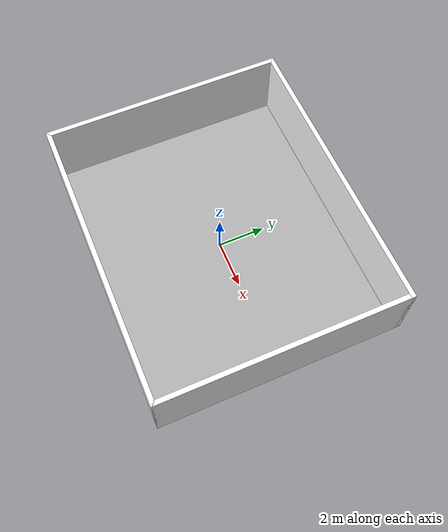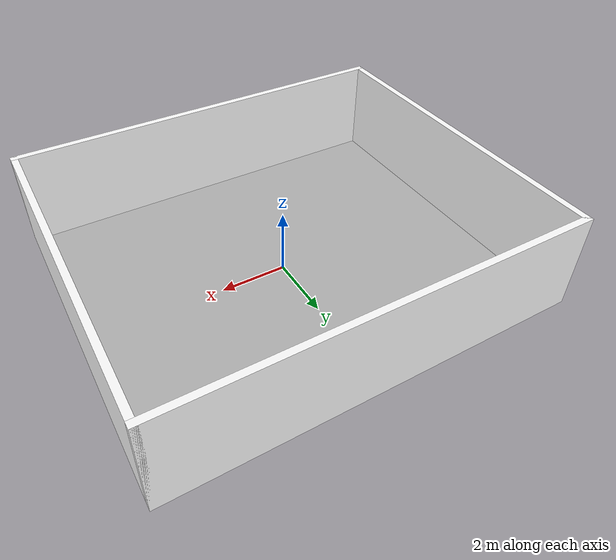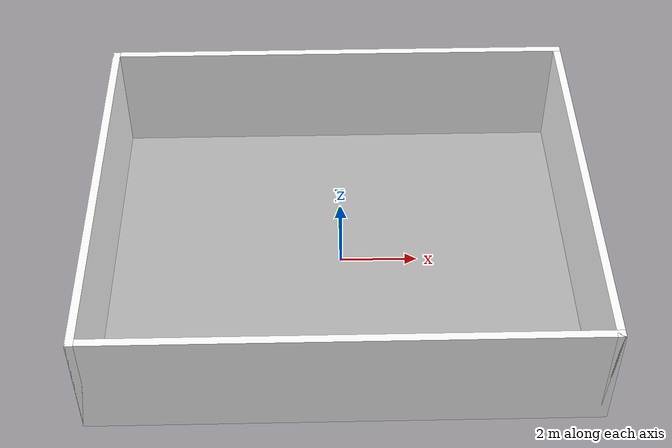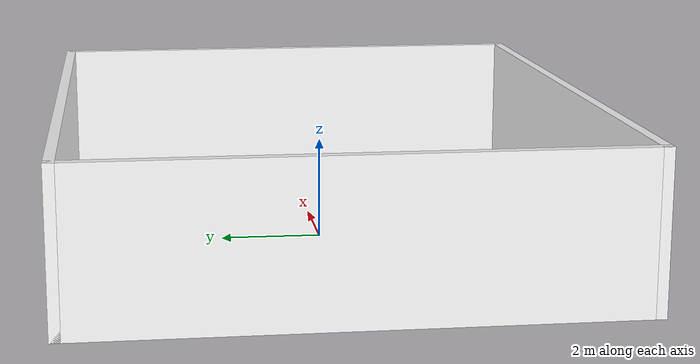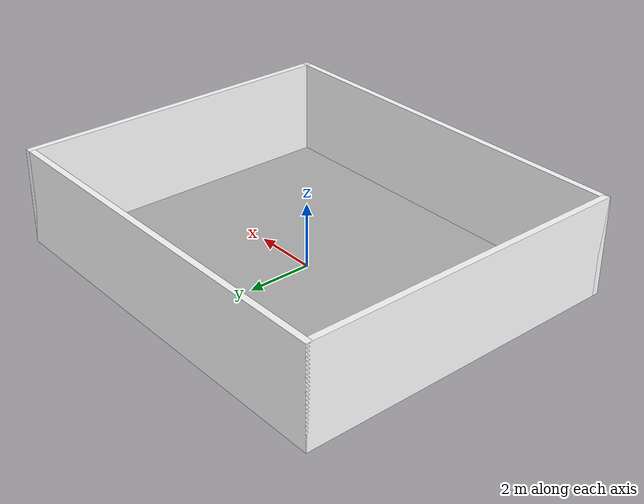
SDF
<?xml version="1.0"?>
<!-- Static tables + props for multi-UR / gripper lab. Factory: textured walls + ground_plane (factory_floor assets). ur1 @ (0,0); ur2 table @ +2 X. -->
<!-- World plugins: gz-sim-sensors-system + ogre2 required for RGB/RGB-D camera rendering (see gz-sim sensors_demo). -->
<sdf version="1.10">
  <world name="lab_table_coke">
    <physics type="ode">
      <max_step_size>0.001</max_step_size>
      <real_time_factor>1</real_time_factor>
      <real_time_update_rate>1000</real_time_update_rate>
    </physics>
    <gravity>0 0 -9.81</gravity>

    <plugin filename="gz-sim-physics-system" name="gz::sim::systems::Physics"/>
    <plugin filename="gz-sim-sensors-system" name="gz::sim::systems::Sensors">
      <render_engine>ogre2</render_engine>
    </plugin>
    <plugin filename="gz-sim-user-commands-system" name="gz::sim::systems::UserCommands"/>
    <plugin filename="gz-sim-scene-broadcaster-system" name="gz::sim::systems::SceneBroadcaster"/>
    <plugin filename="gz-sim-contact-system" name="gz::sim::systems::Contact"/>

    <!-- Bez izvora svjetla vizuali bez materijala izgledaju gotovo crno. -->
    <scene>
      <ambient>0.5 0.5 0.52 1</ambient>
      <background>0.8 0.85 0.9 1</background>
      <shadows>1</shadows>
    </scene>
    <light name="sun" type="directional">
      <pose>0 0 10 0 0 0</pose>
      <diffuse>0.95 0.95 0.95 1</diffuse>
      <specular>0.3 0.3 0.3 1</specular>
      <direction>-0.3 0.2 -1</direction>
      <cast_shadows>true</cast_shadows>
    </light>

    <model name="ground_plane">
      <static>true</static>
      <link name="link">
        <collision name="collision">
          <geometry>
            <plane>
              <normal>0 0 1</normal>
              <!-- Match factory_walls interior: 12 m × 10 m (inner faces x ±6, y ±5). -->
              <size>12 10</size>
            </plane>
          </geometry>
          <surface>
            <friction>
              <ode>
                <mu>4.0</mu>
                <mu2>4.0</mu2>
              </ode>
            </friction>
          </surface>
        </collision>
        <visual name="visual">
          <geometry>
            <mesh>
              <uri>model://factory_floor/meshes/floor_plane.obj</uri>
              <scale>1 1 1</scale>
            </mesh>
          </geometry>
          <material>
            <ambient>0.5 0.5 0.5 1</ambient>
            <diffuse>0.7 0.7 0.7 1</diffuse>
            <specular>0.2 0.2 0.2 1</specular>
            <pbr>
              <metal>
                <albedo_map>model://factory_floor/materials/textures/floor.jpg</albedo_map>
                <roughness>0.8</roughness>
              </metal>
            </pbr>
          </material>
        </visual>
      </link>
    </model>

    <!-- Factory room: 4 walls (interior ~12 m × 10 m, height 3 m). Wall albedo: textures/Gemini_Generated_Image_* → factory_floor/materials/textures/wall.png -->
    <model name="factory_walls">
      <static>true</static>
      <pose>0 0 0 0 0 0</pose>
      <link name="link">
        <!-- Inner half-extents: Wx/2=6, Dy/2=5; wall thickness t=0.2. N/S walls span Wx+2t; E/W span Dy+2t for closed corners. -->
        <collision name="wall_north">
          <pose>0 5.1 1.5 0 0 0</pose>
          <geometry>
            <box><size>12.4 0.2 3</size></box>
          </geometry>
        </collision>
        <visual name="wall_north_vis">
          <pose>0 5.1 1.5 0 0 0</pose>
          <geometry>
            <box><size>12.4 0.2 3</size></box>
          </geometry>
          <material>
            <ambient>1 1 1 1</ambient>
            <diffuse>1 1 1 1</diffuse>
            <specular>0.12 0.12 0.12 1</specular>
            <pbr>
              <metal>
                <albedo_map>model://factory_floor/materials/textures/wall.png</albedo_map>
                <roughness>0.85</roughness>
              </metal>
            </pbr>
          </material>
        </visual>
        <collision name="wall_south">
          <pose>0 -5.1 1.5 0 0 0</pose>
          <geometry>
            <box><size>12.4 0.2 3</size></box>
          </geometry>
        </collision>
        <visual name="wall_south_vis">
          <pose>0 -5.1 1.5 0 0 0</pose>
          <geometry>
            <box><size>12.4 0.2 3</size></box>
          </geometry>
          <material>
            <ambient>1 1 1 1</ambient>
            <diffuse>1 1 1 1</diffuse>
            <specular>0.12 0.12 0.12 1</specular>
            <pbr>
              <metal>
                <albedo_map>model://factory_floor/materials/textures/wall.png</albedo_map>
                <roughness>0.85</roughness>
              </metal>
            </pbr>
          </material>
        </visual>
        <collision name="wall_east">
          <pose>6.1 0 1.5 0 0 0</pose>
          <geometry>
            <box><size>0.2 10.4 3</size></box>
          </geometry>
        </collision>
        <visual name="wall_east_vis">
          <pose>6.1 0 1.5 0 0 0</pose>
          <geometry>
            <box><size>0.2 10.4 3</size></box>
          </geometry>
          <material>
            <ambient>1 1 1 1</ambient>
            <diffuse>1 1 1 1</diffuse>
            <specular>0.12 0.12 0.12 1</specular>
            <pbr>
              <metal>
                <albedo_map>model://factory_floor/materials/textures/wall.png</albedo_map>
                <roughness>0.85</roughness>
              </metal>
            </pbr>
          </material>
        </visual>
        <collision name="wall_west">
          <pose>-6.1 0 1.5 0 0 0</pose>
          <geometry>
            <box><size>0.2 10.4 3</size></box>
          </geometry>
        </collision>
        <visual name="wall_west_vis">
          <pose>-6.1 0 1.5 0 0 0</pose>
          <geometry>
            <box><size>0.2 10.4 3</size></box>
          </geometry>
          <material>
            <ambient>1 1 1 1</ambient>
            <diffuse>1 1 1 1</diffuse>
            <specular>0.12 0.12 0.12 1</specular>
            <pbr>
              <metal>
                <albedo_map>model://factory_floor/materials/textures/wall.png</albedo_map>
                <roughness>0.85</roughness>
              </metal>
            </pbr>
          </material>
        </visual>
      </link>
    </model>

    <!-- Tables and props: spawned from profile YAML (world_props) via ros_gz_sim create; see arm_api2_gui World layout. -->
  </world>
</sdf>
